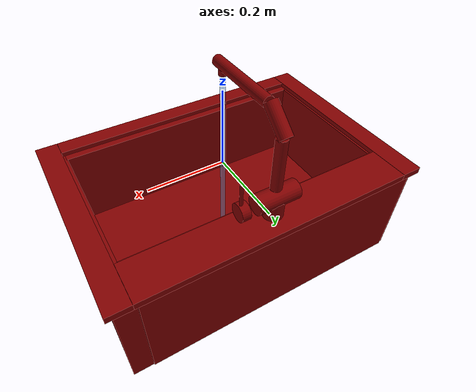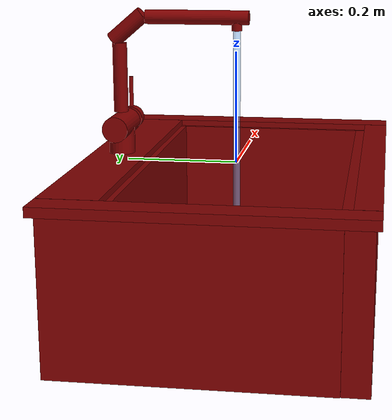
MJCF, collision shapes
<?xml version='1.0' encoding='UTF-8'?>
<mujoco model="model">
  <option timestep="0.002" gravity="0.0 0.0 -9.81"/>
  <compiler angle="radian"/>
  <asset>
    <mesh file="visuals/handle.obj" name="handle_vis"/>
    <mesh file="visuals/Body001.obj" name="Body001_vis"/>
    <mesh file="visuals/spout.obj" name="spout_vis"/>
    <texture file="visuals/T_BC001.png" name="Body001_material" type="2d"/>
    <material name="Body001_material" rgba="1 1 1 1.0" texture="Body001_material" shininess="0.1" specular="2"/>
    <texture file="visuals/T_BC001.png" name="handle_material" type="2d"/>
    <material name="handle_material" rgba="1 1 1 1.0" texture="handle_material" shininess="0.1" specular="2"/>
    <texture file="visuals/T_BC001.png" name="spout_material" type="2d"/>
    <material name="spout_material" rgba="1 1 1 1.0" texture="spout_material" shininess="0.1" specular="2"/>
  </asset>
  <default>
    <default class="visual">
      <geom conaffinity="0" contype="0" group="1" type="mesh"/>
    </default>
    <default class="collision">
      <geom group="0" rgba="0.5 0 0 0.5" solimp="0.998 0.998 0.001" solref="0.001 2"/>
    </default>
    <default class="spawn">
      <geom group="0" rgba="1 1 1 0.5" contype="0" conaffinity="0"/>
      <site group="0" rgba="1 1 1 0.5"/>
    </default>
    <default class="region">
      <geom group="1" conaffinity="0" contype="0" rgba="0 1 0 0"/>
    </default>
  </default>
  <worldbody>
    <body>
      <body name="object">
        <geom mesh="Body001_vis" type="mesh" solimp="0.998 0.998 0.001" solref="0.001 1" friction="0.95 0.3 0.1" class="visual" material="Body001_material"/>
        <geom class="collision" type="box" pos="-0.35746220 0.02221176 -0.13569940" size="0.022984236478805542 0.2331775724887848 0.13575202226638794" quat="1.0 0.0 0.0 0.0"/>
        <geom class="collision" type="box" pos="0.35453987 -0.00022186 -0.13569945" size="0.024226194247603416 0.25632280111312866 0.13575126230716705" quat="1.0 0.0 0.0 0.0"/>
        <geom class="collision" type="box" pos="-0.02048980 0.20655160 -0.13569948" size="0.34995296597480774 0.05221405252814293 0.13575252890586853" quat="1.0 0.0 0.0 0.0"/>
        <geom class="collision" type="box" pos="-0.02310603 -0.23056762 -0.13569952" size="0.3556537926197052 0.026718661189079285 0.13575240969657898" quat="1.0 0.0 0.0 0.0"/>
        <geom class="collision" type="box" pos="-0.36679310 0.00000001 0.00315979" size="0.02620834857225418 0.26613011956214905 0.008420069701969624" quat="1.0 0.0 0.0 0.0"/>
        <geom class="collision" type="box" pos="0.36581090 0.00000001 0.00315979" size="0.027190132066607475 0.2661299705505371 0.008420061320066452" quat="1.0 0.0 0.0 0.0"/>
        <geom class="collision" type="box" pos="-0.00085371 -0.24423161 0.00315980" size="0.33922818303108215 0.021897640079259872 0.008420053869485855" quat="1.0 0.0 0.0 0.0"/>
        <geom class="collision" type="box" pos="-0.00085371 0.21553633 0.00315980" size="0.3392278850078583 0.050592999905347824 0.008420047350227833" quat="1.0 0.0 0.0 0.0"/>
        <geom class="collision" type="box" pos="-0.00181216 -0.02442248 -0.24339394" size="0.3369005620479584 0.18389691412448883 0.028057506307959557" quat="1.0 0.0 0.0 0.0"/>
        <geom class="collision" type="cylinder" pos="0.00068549 0.21144406 0.03583772" size="0.02336934022605419 0.022742383182048798" quat="1.0 0.0 0.0 0.0"/>
        <geom class="collision" type="cylinder" pos="-0.00135984 0.21144406 0.06344340" size="0.023010553792119026 0.05056120455265045" quat="0.7071068286895752 0.0 -0.7071067690849304 0.0"/>
        <body name="handle">
          <joint axis="1.0 0.0 0.0" pos="0.07490511 0.21156736 0.06390479" limited="true" name="handle_temp_joint" type="hinge" range="-0.7853981633974483 0.7853981633974483" damping="0.5" frictionloss="1" armature="2"/>
          <joint axis="0.0 1.0 0.0" pos="0.07490511 0.21156736 0.06390479" limited="true" name="handle_joint" type="hinge" range="0 0.5" damping="0.5" frictionloss="1" armature="2"/>
          <geom mesh="handle_vis" type="mesh" solimp="0.998 0.998 0.001" solref="0.001 1" friction="0.95 0.3 0.1" class="visual" material="handle_material"/>
          <geom class="collision" type="cylinder" pos="0.08008852 0.21144406 0.06344340" size="0.0212209764868021 0.010090702213346958" quat="0.7071068286895752 0.0 -0.7071067690849304 0.0"/>
          <geom name="handle_main" class="collision" type="cylinder" pos="0.08331956 0.21221165 0.11158325" size="0.0037490269169211388 0.0287446491420269" quat="7.549790126404332e-08 -0.0 -1.0 -0.0"/>
        </body>
        <body name="spout">
          <joint axis="0.0 0.0 1.0" pos="0.00043718 0.21142881 0.17631159" limited="true" name="spout_joint" range="-0.7853981633974483 0.7853981633974483" type="hinge" damping="10"/>
          <site type="cylinder" rgba="0.5 0.75 1 0.5" size="0.00637557078152895 0.2281561940908432" pos="0.00051080 -0.00038310 0.00975460" name="water"/>
          <geom mesh="spout_vis" type="mesh" solimp="0.998 0.998 0.001" solref="0.001 1" friction="0.95 0.3 0.1" class="visual" material="spout_material"/>
          <geom class="collision" type="cylinder" pos="0.00048344 0.07038264 0.25966764" size="0.012713657692074776 0.09240955114364624" quat="2.247645092268158e-08 8.429369557916289e-08 -0.7071068286895752 -0.7071067094802856" name="spout_main"/>
          <geom class="collision" type="cylinder" pos="0.00045443 0.21158510 0.15086413" size="0.012904489412903786 0.06219162791967392" quat="7.549790126404332e-08 -0.0 -1.0 -0.0"/>
          <geom class="collision" type="cylinder" pos="0.00048342 0.19532503 0.24092621" size="0.014660518616437912 0.03633870184421539" quat="3.2521985104949636e-08 -1.0958445528785887e-07 0.9077298641204834 0.419555127620697"/>
          <geom class="collision" type="cylinder" pos="0.00045443 -0.00035874 0.24390701" size="0.00948744360357523 0.007031399291008711" quat="7.549790126404332e-08 -0.0 -1.0 -0.0"/>
        </body>
        <geom class="region" name="reg_basin" type="box" pos="-0.0038416949999999783 -0.024933109999999994 -0.10773882" size="0.326003235 0.17416052999999998 0.10348454"/>
        <geom class="region" name="reg_main" type="box" pos="-1.9999999997799556e-07 0.0 -0.129935795" size="0.39400113999999997 0.26712923 0.142515615"/>
      </body>
    </body>
  </worldbody>
  <actuator>
    <motor name="handle_joint_actuator" joint="handle_joint" gear="10"/>
    <motor name="handle_temp_joint_actuator" joint="handle_temp_joint" gear="10"/>
    <motor name="spout_joint_actuator" joint="spout_joint" gear="10"/>
  </actuator>
</mujoco>
